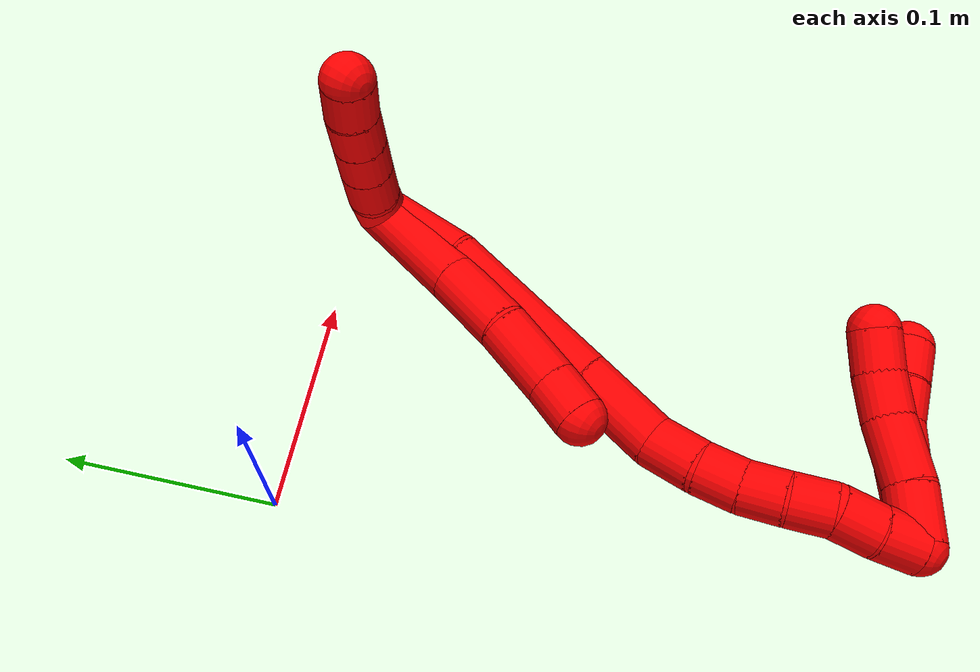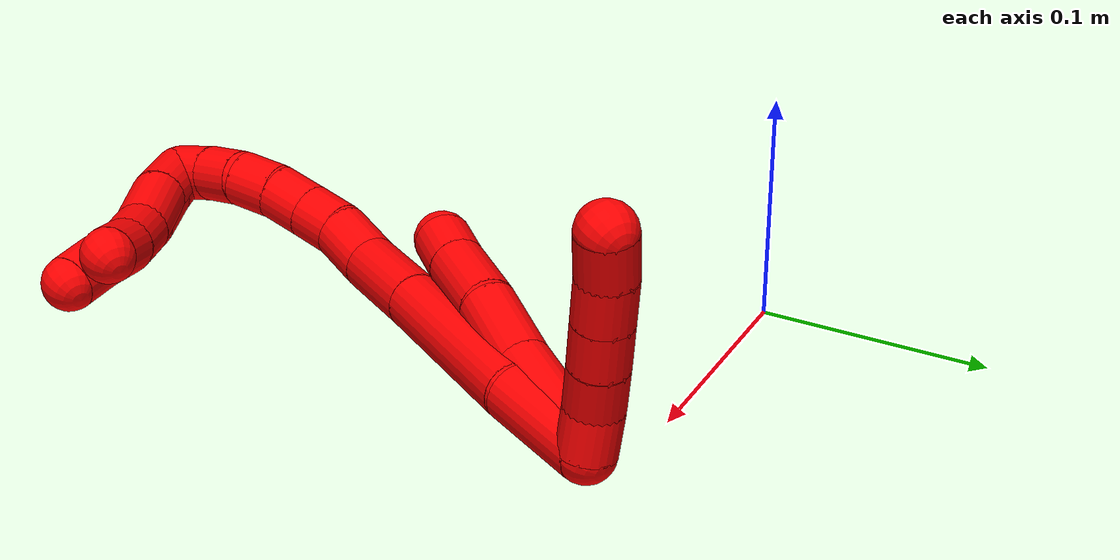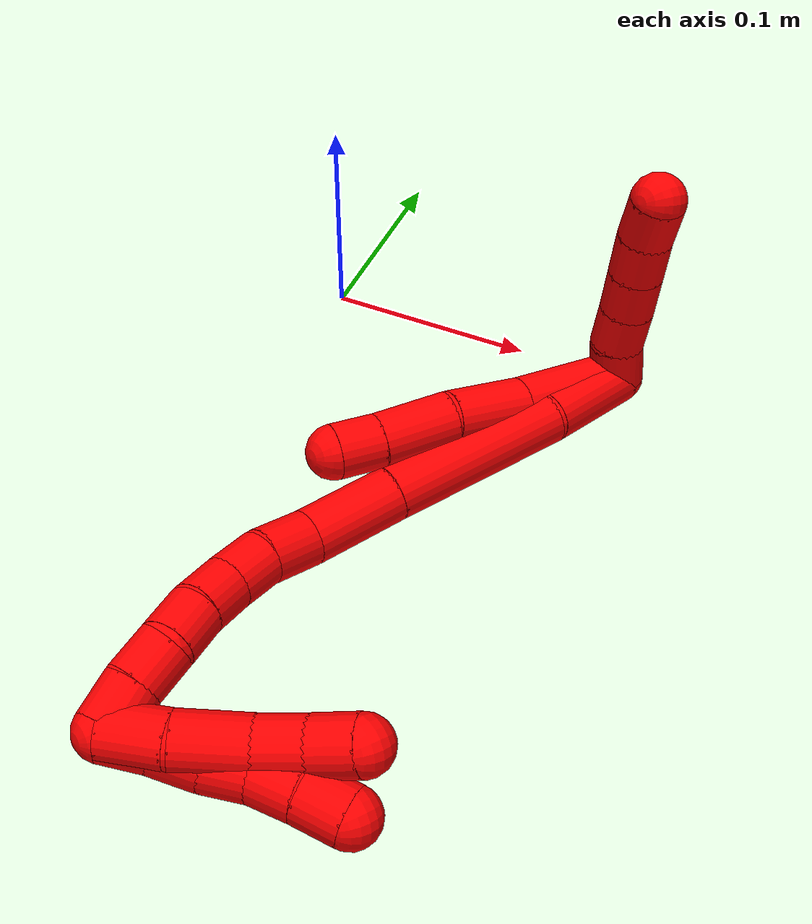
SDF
<sdf version="1.7">
 <world name="default">
  <model name="2">
   <static>0</static>
   <link name="2">
    <collision name="collision-cylinder-e_1_2_8">
     <pose>-0.004675 -0.000188 0.027952 0.006713 -0.16573 -0.000558</pose>
     <geometry><cylinder><radius>0.0125</radius><length>0.056681</length></cylinder></geometry>
     <surface>
      <friction><ode><mu>1.16</mu><mu2>1.16</mu2><slip1>0</slip1><slip2>0</slip2></ode></friction>
      <contact><ode><kp>1e+06</kp><kd>1</kd><max_vel>0</max_vel><min_depth>0.001</min_depth></ode></contact>
     </surface>
    </collision>
    <visual name="visual-cylinder-e_1_2_8">
     <pose>-0.004675 -0.000188 0.027952 0.006713 -0.16573 -0.000558</pose>
     <geometry><cylinder><radius>0.0125</radius><length>0.056681</length></cylinder></geometry>
     <material><ambient>1 0 0 1</ambient></material>
    </visual>
    <collision name="collision-cylinder-e_2_8_9">
     <pose>-0.012399 0.00077 0.074243 -0.062341 -0.164384 0.005137</pose>
     <geometry><cylinder><radius>0.0125</radius><length>0.037254</length></cylinder></geometry>
     <surface>
      <friction><ode><mu>1.16</mu><mu2>1.16</mu2><slip1>0</slip1><slip2>0</slip2></ode></friction>
      <contact><ode><kp>1e+06</kp><kd>1</kd><max_vel>0</max_vel><min_depth>0.001</min_depth></ode></contact>
     </surface>
    </collision>
    <visual name="visual-cylinder-e_2_8_9">
     <pose>-0.012399 0.00077 0.074243 -0.062341 -0.164384 0.005137</pose>
     <geometry><cylinder><radius>0.0125</radius><length>0.037254</length></cylinder></geometry>
     <material><ambient>1 0 0 1</ambient></material>
    </visual>
    <collision name="collision-cylinder-e_3_9_10">
     <pose>-0.020531 0.000943 0.109387 0.057762 -0.293323 -0.008535</pose>
     <geometry><cylinder><radius>0.0125</radius><length>0.035165</length></cylinder></geometry>
     <surface>
      <friction><ode><mu>1.16</mu><mu2>1.16</mu2><slip1>0</slip1><slip2>0</slip2></ode></friction>
      <contact><ode><kp>1e+06</kp><kd>1</kd><max_vel>0</max_vel><min_depth>0.001</min_depth></ode></contact>
     </surface>
    </collision>
    <visual name="visual-cylinder-e_3_9_10">
     <pose>-0.020531 0.000943 0.109387 0.057762 -0.293323 -0.008535</pose>
     <geometry><cylinder><radius>0.0125</radius><length>0.035165</length></cylinder></geometry>
     <material><ambient>1 0 0 1</ambient></material>
    </visual>
    <collision name="collision-cylinder-e_4_10_6">
     <pose>-0.028701 7.7e-05 0.136174 -0.010639 -0.299785 0.001607</pose>
     <geometry><cylinder><radius>0.0125</radius><length>0.0209</length></cylinder></geometry>
     <surface>
      <friction><ode><mu>1.16</mu><mu2>1.16</mu2><slip1>0</slip1><slip2>0</slip2></ode></friction>
      <contact><ode><kp>1e+06</kp><kd>1</kd><max_vel>0</max_vel><min_depth>0.001</min_depth></ode></contact>
     </surface>
    </collision>
    <visual name="visual-cylinder-e_4_10_6">
     <pose>-0.028701 7.7e-05 0.136174 -0.010639 -0.299785 0.001607</pose>
     <geometry><cylinder><radius>0.0125</radius><length>0.0209</length></cylinder></geometry>
     <material><ambient>1 0 0 1</ambient></material>
    </visual>
    <collision name="collision-cylinder-e_1_2_11">
     <pose>0.004815 0.008401 0.002497 -1.28192 0.502422 -0.378335</pose>
     <geometry><cylinder><radius>0.0125</radius><length>0.02</length></cylinder></geometry>
     <surface>
      <friction><ode><mu>1.16</mu><mu2>1.16</mu2><slip1>0</slip1><slip2>0</slip2></ode></friction>
      <contact><ode><kp>1e+06</kp><kd>1</kd><max_vel>0</max_vel><min_depth>0.001</min_depth></ode></contact>
     </surface>
    </collision>
    <visual name="visual-cylinder-e_1_2_11">
     <pose>0.004815 0.008401 0.002497 -1.28192 0.502422 -0.378335</pose>
     <geometry><cylinder><radius>0.0125</radius><length>0.02</length></cylinder></geometry>
     <material><ambient>1 0 0 1</ambient></material>
    </visual>
    <collision name="collision-cylinder-e_2_11_12">
     <pose>0.016037 0.024385 0.006204 -1.41249 0.695228 -0.599517</pose>
     <geometry><cylinder><radius>0.0125</radius><length>0.02</length></cylinder></geometry>
     <surface>
      <friction><ode><mu>1.16</mu><mu2>1.16</mu2><slip1>0</slip1><slip2>0</slip2></ode></friction>
      <contact><ode><kp>1e+06</kp><kd>1</kd><max_vel>0</max_vel><min_depth>0.001</min_depth></ode></contact>
     </surface>
    </collision>
    <visual name="visual-cylinder-e_2_11_12">
     <pose>0.016037 0.024385 0.006204 -1.41249 0.695228 -0.599517</pose>
     <geometry><cylinder><radius>0.0125</radius><length>0.02</length></cylinder></geometry>
     <material><ambient>1 0 0 1</ambient></material>
    </visual>
    <collision name="collision-cylinder-e_3_12_13">
     <pose>0.028741 0.039573 0.008995 -1.36585 0.681367 -0.56155</pose>
     <geometry><cylinder><radius>0.0125</radius><length>0.02</length></cylinder></geometry>
     <surface>
      <friction><ode><mu>1.16</mu><mu2>1.16</mu2><slip1>0</slip1><slip2>0</slip2></ode></friction>
      <contact><ode><kp>1e+06</kp><kd>1</kd><max_vel>0</max_vel><min_depth>0.001</min_depth></ode></contact>
     </surface>
    </collision>
    <visual name="visual-cylinder-e_3_12_13">
     <pose>0.028741 0.039573 0.008995 -1.36585 0.681367 -0.56155</pose>
     <geometry><cylinder><radius>0.0125</radius><length>0.02</length></cylinder></geometry>
     <material><ambient>1 0 0 1</ambient></material>
    </visual>
    <collision name="collision-cylinder-e_4_13_14">
     <pose>0.041337 0.054785 0.012149 -1.36688 0.681201 -0.561974</pose>
     <geometry><cylinder><radius>0.0125</radius><length>0.02</length></cylinder></geometry>
     <surface>
      <friction><ode><mu>1.16</mu><mu2>1.16</mu2><slip1>0</slip1><slip2>0</slip2></ode></friction>
      <contact><ode><kp>1e+06</kp><kd>1</kd><max_vel>0</max_vel><min_depth>0.001</min_depth></ode></contact>
     </surface>
    </collision>
    <visual name="visual-cylinder-e_4_13_14">
     <pose>0.041337 0.054785 0.012149 -1.36688 0.681201 -0.561974</pose>
     <geometry><cylinder><radius>0.0125</radius><length>0.02</length></cylinder></geometry>
     <material><ambient>1 0 0 1</ambient></material>
    </visual>
    <collision name="collision-cylinder-e_5_14_5">
     <pose>0.054694 0.06928 0.01537 -1.33598 0.783798 -0.630398</pose>
     <geometry><cylinder><radius>0.0125</radius><length>0.02</length></cylinder></geometry>
     <surface>
      <friction><ode><mu>1.16</mu><mu2>1.16</mu2><slip1>0</slip1><slip2>0</slip2></ode></friction>
      <contact><ode><kp>1e+06</kp><kd>1</kd><max_vel>0</max_vel><min_depth>0.001</min_depth></ode></contact>
     </surface>
    </collision>
    <visual name="visual-cylinder-e_5_14_5">
     <pose>0.054694 0.06928 0.01537 -1.33598 0.783798 -0.630398</pose>
     <geometry><cylinder><radius>0.0125</radius><length>0.02</length></cylinder></geometry>
     <material><ambient>1 0 0 1</ambient></material>
    </visual>
    <collision name="collision-cylinder-e_1_2_15">
     <pose>-0.001123 -0.00434 0.023057 0.186049 -0.047845 -0.004464</pose>
     <geometry><cylinder><radius>0.0125</radius><length>0.046977</length></cylinder></geometry>
     <surface>
      <friction><ode><mu>1.16</mu><mu2>1.16</mu2><slip1>0</slip1><slip2>0</slip2></ode></friction>
      <contact><ode><kp>1e+06</kp><kd>1</kd><max_vel>0</max_vel><min_depth>0.001</min_depth></ode></contact>
     </surface>
    </collision>
    <visual name="visual-cylinder-e_1_2_15">
     <pose>-0.001123 -0.00434 0.023057 0.186049 -0.047845 -0.004464</pose>
     <geometry><cylinder><radius>0.0125</radius><length>0.046977</length></cylinder></geometry>
     <material><ambient>1 0 0 1</ambient></material>
    </visual>
    <collision name="collision-cylinder-e_2_15_16">
     <pose>-0.012077 -0.016119 0.086865 0.180555 -0.233002 -0.021187</pose>
     <geometry><cylinder><radius>0.0125</radius><length>0.085151</length></cylinder></geometry>
     <surface>
      <friction><ode><mu>1.16</mu><mu2>1.16</mu2><slip1>0</slip1><slip2>0</slip2></ode></friction>
      <contact><ode><kp>1e+06</kp><kd>1</kd><max_vel>0</max_vel><min_depth>0.001</min_depth></ode></contact>
     </surface>
    </collision>
    <visual name="visual-cylinder-e_2_15_16">
     <pose>-0.012077 -0.016119 0.086865 0.180555 -0.233002 -0.021187</pose>
     <geometry><cylinder><radius>0.0125</radius><length>0.085151</length></cylinder></geometry>
     <material><ambient>1 0 0 1</ambient></material>
    </visual>
    <collision name="collision-cylinder-e_3_16_17">
     <pose>-0.027138 -0.027848 0.148008 0.207398 -0.245904 -0.02572</pose>
     <geometry><cylinder><radius>0.0125</radius><length>0.042969</length></cylinder></geometry>
     <surface>
      <friction><ode><mu>1.16</mu><mu2>1.16</mu2><slip1>0</slip1><slip2>0</slip2></ode></friction>
      <contact><ode><kp>1e+06</kp><kd>1</kd><max_vel>0</max_vel><min_depth>0.001</min_depth></ode></contact>
     </surface>
    </collision>
    <visual name="visual-cylinder-e_3_16_17">
     <pose>-0.027138 -0.027848 0.148008 0.207398 -0.245904 -0.02572</pose>
     <geometry><cylinder><radius>0.0125</radius><length>0.042969</length></cylinder></geometry>
     <material><ambient>1 0 0 1</ambient></material>
    </visual>
    <collision name="collision-cylinder-e_4_17_18">
     <pose>-0.031819 -0.03288 0.180705 0.060126 0.044475 0.001338</pose>
     <geometry><cylinder><radius>0.0125</radius><length>0.024679</length></cylinder></geometry>
     <surface>
      <friction><ode><mu>1.16</mu><mu2>1.16</mu2><slip1>0</slip1><slip2>0</slip2></ode></friction>
      <contact><ode><kp>1e+06</kp><kd>1</kd><max_vel>0</max_vel><min_depth>0.001</min_depth></ode></contact>
     </surface>
    </collision>
    <visual name="visual-cylinder-e_4_17_18">
     <pose>-0.031819 -0.03288 0.180705 0.060126 0.044475 0.001338</pose>
     <geometry><cylinder><radius>0.0125</radius><length>0.024679</length></cylinder></geometry>
     <material><ambient>1 0 0 1</ambient></material>
    </visual>
    <collision name="collision-cylinder-e_5_18_19">
     <pose>-0.030417 -0.036282 0.20272 0.267497 0.084585 0.011388</pose>
     <geometry><cylinder><radius>0.0125</radius><length>0.020208</length></cylinder></geometry>
     <surface>
      <friction><ode><mu>1.16</mu><mu2>1.16</mu2><slip1>0</slip1><slip2>0</slip2></ode></friction>
      <contact><ode><kp>1e+06</kp><kd>1</kd><max_vel>0</max_vel><min_depth>0.001</min_depth></ode></contact>
     </surface>
    </collision>
    <visual name="visual-cylinder-e_5_18_19">
     <pose>-0.030417 -0.036282 0.20272 0.267497 0.084585 0.011388</pose>
     <geometry><cylinder><radius>0.0125</radius><length>0.020208</length></cylinder></geometry>
     <material><ambient>1 0 0 1</ambient></material>
    </visual>
    <collision name="collision-cylinder-e_6_19_20">
     <pose>-0.027059 -0.041439 0.221789 0.260604 0.253027 0.033333</pose>
     <geometry><cylinder><radius>0.0125</radius><length>0.020008</length></cylinder></geometry>
     <surface>
      <friction><ode><mu>1.16</mu><mu2>1.16</mu2><slip1>0</slip1><slip2>0</slip2></ode></friction>
      <contact><ode><kp>1e+06</kp><kd>1</kd><max_vel>0</max_vel><min_depth>0.001</min_depth></ode></contact>
     </surface>
    </collision>
    <visual name="visual-cylinder-e_6_19_20">
     <pose>-0.027059 -0.041439 0.221789 0.260604 0.253027 0.033333</pose>
     <geometry><cylinder><radius>0.0125</radius><length>0.020008</length></cylinder></geometry>
     <material><ambient>1 0 0 1</ambient></material>
    </visual>
    <collision name="collision-cylinder-e_7_20_21">
     <pose>-0.022206 -0.047942 0.240005 0.424834 0.237092 0.051363</pose>
     <geometry><cylinder><radius>0.0125</radius><length>0.020004</length></cylinder></geometry>
     <surface>
      <friction><ode><mu>1.16</mu><mu2>1.16</mu2><slip1>0</slip1><slip2>0</slip2></ode></friction>
      <contact><ode><kp>1e+06</kp><kd>1</kd><max_vel>0</max_vel><min_depth>0.001</min_depth></ode></contact>
     </surface>
    </collision>
    <visual name="visual-cylinder-e_7_20_21">
     <pose>-0.022206 -0.047942 0.240005 0.424834 0.237092 0.051363</pose>
     <geometry><cylinder><radius>0.0125</radius><length>0.020004</length></cylinder></geometry>
     <material><ambient>1 0 0 1</ambient></material>
    </visual>
    <collision name="collision-cylinder-e_8_21_22">
     <pose>-0.020191 -0.057125 0.257413 0.544374 -0.033482 -0.009346</pose>
     <geometry><cylinder><radius>0.0125</radius><length>0.020001</length></cylinder></geometry>
     <surface>
      <friction><ode><mu>1.16</mu><mu2>1.16</mu2><slip1>0</slip1><slip2>0</slip2></ode></friction>
      <contact><ode><kp>1e+06</kp><kd>1</kd><max_vel>0</max_vel><min_depth>0.001</min_depth></ode></contact>
     </surface>
    </collision>
    <visual name="visual-cylinder-e_8_21_22">
     <pose>-0.020191 -0.057125 0.257413 0.544374 -0.033482 -0.009346</pose>
     <geometry><cylinder><radius>0.0125</radius><length>0.020001</length></cylinder></geometry>
     <material><ambient>1 0 0 1</ambient></material>
    </visual>
    <collision name="collision-cylinder-e_9_22_1">
     <pose>-0.020354 -0.068456 0.273844 0.663045 0.017155 0.005905</pose>
     <geometry><cylinder><radius>0.0125</radius><length>0.020003</length></cylinder></geometry>
     <surface>
      <friction><ode><mu>1.16</mu><mu2>1.16</mu2><slip1>0</slip1><slip2>0</slip2></ode></friction>
      <contact><ode><kp>1e+06</kp><kd>1</kd><max_vel>0</max_vel><min_depth>0.001</min_depth></ode></contact>
     </surface>
    </collision>
    <visual name="visual-cylinder-e_9_22_1">
     <pose>-0.020354 -0.068456 0.273844 0.663045 0.017155 0.005905</pose>
     <geometry><cylinder><radius>0.0125</radius><length>0.020003</length></cylinder></geometry>
     <material><ambient>1 0 0 1</ambient></material>
    </visual>
    <collision name="collision-cylinder-e_1_1_23">
     <pose>-0.010775 -0.078629 0.273188 2.70172 0.783916 2.15003</pose>
     <geometry><cylinder><radius>0.0125</radius><length>0.026648</length></cylinder></geometry>
     <surface>
      <friction><ode><mu>1.16</mu><mu2>1.16</mu2><slip1>0</slip1><slip2>0</slip2></ode></friction>
      <contact><ode><kp>1e+06</kp><kd>1</kd><max_vel>0</max_vel><min_depth>0.001</min_depth></ode></contact>
     </surface>
    </collision>
    <visual name="visual-cylinder-e_1_1_23">
     <pose>-0.010775 -0.078629 0.273188 2.70172 0.783916 2.15003</pose>
     <geometry><cylinder><radius>0.0125</radius><length>0.026648</length></cylinder></geometry>
     <material><ambient>1 0 0 1</ambient></material>
    </visual>
    <collision name="collision-cylinder-e_2_23_24">
     <pose>0.008051 -0.086846 0.252739 2.80265 0.640766 2.18934</pose>
     <geometry><cylinder><radius>0.0125</radius><length>0.031512</length></cylinder></geometry>
     <surface>
      <friction><ode><mu>1.16</mu><mu2>1.16</mu2><slip1>0</slip1><slip2>0</slip2></ode></friction>
      <contact><ode><kp>1e+06</kp><kd>1</kd><max_vel>0</max_vel><min_depth>0.001</min_depth></ode></contact>
     </surface>
    </collision>
    <visual name="visual-cylinder-e_2_23_24">
     <pose>0.008051 -0.086846 0.252739 2.80265 0.640766 2.18934</pose>
     <geometry><cylinder><radius>0.0125</radius><length>0.031512</length></cylinder></geometry>
     <material><ambient>1 0 0 1</ambient></material>
    </visual>
    <collision name="collision-cylinder-e_3_24_25">
     <pose>0.025226 -0.092736 0.233506 2.91473 0.801261 2.61608</pose>
     <geometry><cylinder><radius>0.0125</radius><length>0.021598</length></cylinder></geometry>
     <surface>
      <friction><ode><mu>1.16</mu><mu2>1.16</mu2><slip1>0</slip1><slip2>0</slip2></ode></friction>
      <contact><ode><kp>1e+06</kp><kd>1</kd><max_vel>0</max_vel><min_depth>0.001</min_depth></ode></contact>
     </surface>
    </collision>
    <visual name="visual-cylinder-e_3_24_25">
     <pose>0.025226 -0.092736 0.233506 2.91473 0.801261 2.61608</pose>
     <geometry><cylinder><radius>0.0125</radius><length>0.021598</length></cylinder></geometry>
     <material><ambient>1 0 0 1</ambient></material>
    </visual>
    <collision name="collision-cylinder-e_4_25_4">
     <pose>0.041135 -0.095262 0.220245 3.00187 0.936484 2.86662</pose>
     <geometry><cylinder><radius>0.0125</radius><length>0.020243</length></cylinder></geometry>
     <surface>
      <friction><ode><mu>1.16</mu><mu2>1.16</mu2><slip1>0</slip1><slip2>0</slip2></ode></friction>
      <contact><ode><kp>1e+06</kp><kd>1</kd><max_vel>0</max_vel><min_depth>0.001</min_depth></ode></contact>
     </surface>
    </collision>
    <visual name="visual-cylinder-e_4_25_4">
     <pose>0.041135 -0.095262 0.220245 3.00187 0.936484 2.86662</pose>
     <geometry><cylinder><radius>0.0125</radius><length>0.020243</length></cylinder></geometry>
     <material><ambient>1 0 0 1</ambient></material>
    </visual>
    <collision name="collision-cylinder-e_1_1_26">
     <pose>-0.013846 -0.078609 0.275103 2.59849 0.686347 1.81769</pose>
     <geometry><cylinder><radius>0.0125</radius><length>0.02</length></cylinder></geometry>
     <surface>
      <friction><ode><mu>1.16</mu><mu2>1.16</mu2><slip1>0</slip1><slip2>0</slip2></ode></friction>
      <contact><ode><kp>1e+06</kp><kd>1</kd><max_vel>0</max_vel><min_depth>0.001</min_depth></ode></contact>
     </surface>
    </collision>
    <visual name="visual-cylinder-e_1_1_26">
     <pose>-0.013846 -0.078609 0.275103 2.59849 0.686347 1.81769</pose>
     <geometry><cylinder><radius>0.0125</radius><length>0.02</length></cylinder></geometry>
     <material><ambient>1 0 0 1</ambient></material>
    </visual>
    <collision name="collision-cylinder-e_2_26_27">
     <pose>-0.002496 -0.088042 0.261747 2.46252 0.525032 1.30072</pose>
     <geometry><cylinder><radius>0.0125</radius><length>0.02</length></cylinder></geometry>
     <surface>
      <friction><ode><mu>1.16</mu><mu2>1.16</mu2><slip1>0</slip1><slip2>0</slip2></ode></friction>
      <contact><ode><kp>1e+06</kp><kd>1</kd><max_vel>0</max_vel><min_depth>0.001</min_depth></ode></contact>
     </surface>
    </collision>
    <visual name="visual-cylinder-e_2_26_27">
     <pose>-0.002496 -0.088042 0.261747 2.46252 0.525032 1.30072</pose>
     <geometry><cylinder><radius>0.0125</radius><length>0.02</length></cylinder></geometry>
     <material><ambient>1 0 0 1</ambient></material>
    </visual>
    <collision name="collision-cylinder-e_3_27_28">
     <pose>0.009379 -0.097077 0.248694 2.62369 0.756352 1.96548</pose>
     <geometry><cylinder><radius>0.0125</radius><length>0.02</length></cylinder></geometry>
     <surface>
      <friction><ode><mu>1.16</mu><mu2>1.16</mu2><slip1>0</slip1><slip2>0</slip2></ode></friction>
      <contact><ode><kp>1e+06</kp><kd>1</kd><max_vel>0</max_vel><min_depth>0.001</min_depth></ode></contact>
     </surface>
    </collision>
    <visual name="visual-cylinder-e_3_27_28">
     <pose>0.009379 -0.097077 0.248694 2.62369 0.756352 1.96548</pose>
     <geometry><cylinder><radius>0.0125</radius><length>0.02</length></cylinder></geometry>
     <material><ambient>1 0 0 1</ambient></material>
    </visual>
    <collision name="collision-cylinder-e_4_28_29">
     <pose>0.02403 -0.105158 0.237984 2.34599 0.892767 1.70057</pose>
     <geometry><cylinder><radius>0.0125</radius><length>0.02</length></cylinder></geometry>
     <surface>
      <friction><ode><mu>1.16</mu><mu2>1.16</mu2><slip1>0</slip1><slip2>0</slip2></ode></friction>
      <contact><ode><kp>1e+06</kp><kd>1</kd><max_vel>0</max_vel><min_depth>0.001</min_depth></ode></contact>
     </surface>
    </collision>
    <visual name="visual-cylinder-e_4_28_29">
     <pose>0.02403 -0.105158 0.237984 2.34599 0.892767 1.70057</pose>
     <geometry><cylinder><radius>0.0125</radius><length>0.02</length></cylinder></geometry>
     <material><ambient>1 0 0 1</ambient></material>
    </visual>
    <collision name="collision-cylinder-e_5_29_3">
     <pose>0.039084 -0.114878 0.229151 2.27418 0.813399 1.49832</pose>
     <geometry><cylinder><radius>0.0125</radius><length>0.02</length></cylinder></geometry>
     <surface>
      <friction><ode><mu>1.16</mu><mu2>1.16</mu2><slip1>0</slip1><slip2>0</slip2></ode></friction>
      <contact><ode><kp>1e+06</kp><kd>1</kd><max_vel>0</max_vel><min_depth>0.001</min_depth></ode></contact>
     </surface>
    </collision>
    <visual name="visual-cylinder-e_5_29_3">
     <pose>0.039084 -0.114878 0.229151 2.27418 0.813399 1.49832</pose>
     <geometry><cylinder><radius>0.0125</radius><length>0.02</length></cylinder></geometry>
     <material><ambient>1 0 0 1</ambient></material>
    </visual>
    <collision name="collision-sphere-3">
     <pose>0.046351 -0.120118 0.224707 0 -0 0</pose>
     <geometry><sphere><radius>0.0125</radius></sphere></geometry>
     <surface>
      <friction><ode><mu>1.16</mu><mu2>1.16</mu2><slip1>0</slip1><slip2>0</slip2></ode></friction>
      <contact><ode><kp>1e+06</kp><kd>1</kd><max_vel>0</max_vel><min_depth>0.001</min_depth></ode></contact>
     </surface>
    </collision>
    <visual name="visual-sphere-3">
     <pose>0.046351 -0.120118 0.224707 0 -0 0</pose>
     <geometry><sphere><radius>0.0125</radius></sphere></geometry>
     <material><ambient>1 0 0 1</ambient></material>
    </visual>
    <collision name="collision-sphere-29">
     <pose>0.031818 -0.109639 0.233594 0 -0 0</pose>
     <geometry><sphere><radius>0.0125</radius></sphere></geometry>
     <surface>
      <friction><ode><mu>1.16</mu><mu2>1.16</mu2><slip1>0</slip1><slip2>0</slip2></ode></friction>
      <contact><ode><kp>1e+06</kp><kd>1</kd><max_vel>0</max_vel><min_depth>0.001</min_depth></ode></contact>
     </surface>
    </collision>
    <visual name="visual-sphere-29">
     <pose>0.031818 -0.109639 0.233594 0 -0 0</pose>
     <geometry><sphere><radius>0.0125</radius></sphere></geometry>
     <material><ambient>1 0 0 1</ambient></material>
    </visual>
    <collision name="collision-sphere-28">
     <pose>0.016242 -0.100678 0.242374 0 -0 0</pose>
     <geometry><sphere><radius>0.0125</radius></sphere></geometry>
     <surface>
      <friction><ode><mu>1.16</mu><mu2>1.16</mu2><slip1>0</slip1><slip2>0</slip2></ode></friction>
      <contact><ode><kp>1e+06</kp><kd>1</kd><max_vel>0</max_vel><min_depth>0.001</min_depth></ode></contact>
     </surface>
    </collision>
    <visual name="visual-sphere-28">
     <pose>0.016242 -0.100678 0.242374 0 -0 0</pose>
     <geometry><sphere><radius>0.0125</radius></sphere></geometry>
     <material><ambient>1 0 0 1</ambient></material>
    </visual>
    <collision name="collision-sphere-27">
     <pose>0.002516 -0.093476 0.255013 0 -0 0</pose>
     <geometry><sphere><radius>0.0125</radius></sphere></geometry>
     <surface>
      <friction><ode><mu>1.16</mu><mu2>1.16</mu2><slip1>0</slip1><slip2>0</slip2></ode></friction>
      <contact><ode><kp>1e+06</kp><kd>1</kd><max_vel>0</max_vel><min_depth>0.001</min_depth></ode></contact>
     </surface>
    </collision>
    <visual name="visual-sphere-27">
     <pose>0.002516 -0.093476 0.255013 0 -0 0</pose>
     <geometry><sphere><radius>0.0125</radius></sphere></geometry>
     <material><ambient>1 0 0 1</ambient></material>
    </visual>
    <collision name="collision-sphere-26">
     <pose>-0.007508 -0.082607 0.26848 0 -0 0</pose>
     <geometry><sphere><radius>0.0125</radius></sphere></geometry>
     <surface>
      <friction><ode><mu>1.16</mu><mu2>1.16</mu2><slip1>0</slip1><slip2>0</slip2></ode></friction>
      <contact><ode><kp>1e+06</kp><kd>1</kd><max_vel>0</max_vel><min_depth>0.001</min_depth></ode></contact>
     </surface>
    </collision>
    <visual name="visual-sphere-26">
     <pose>-0.007508 -0.082607 0.26848 0 -0 0</pose>
     <geometry><sphere><radius>0.0125</radius></sphere></geometry>
     <material><ambient>1 0 0 1</ambient></material>
    </visual>
    <collision name="collision-sphere-4">
     <pose>0.049287 -0.096097 0.214305 0 -0 0</pose>
     <geometry><sphere><radius>0.0125</radius></sphere></geometry>
     <surface>
      <friction><ode><mu>1.16</mu><mu2>1.16</mu2><slip1>0</slip1><slip2>0</slip2></ode></friction>
      <contact><ode><kp>1e+06</kp><kd>1</kd><max_vel>0</max_vel><min_depth>0.001</min_depth></ode></contact>
     </surface>
    </collision>
    <visual name="visual-sphere-4">
     <pose>0.049287 -0.096097 0.214305 0 -0 0</pose>
     <geometry><sphere><radius>0.0125</radius></sphere></geometry>
     <material><ambient>1 0 0 1</ambient></material>
    </visual>
    <collision name="collision-sphere-25">
     <pose>0.032982 -0.094426 0.226184 0 -0 0</pose>
     <geometry><sphere><radius>0.0125</radius></sphere></geometry>
     <surface>
      <friction><ode><mu>1.16</mu><mu2>1.16</mu2><slip1>0</slip1><slip2>0</slip2></ode></friction>
      <contact><ode><kp>1e+06</kp><kd>1</kd><max_vel>0</max_vel><min_depth>0.001</min_depth></ode></contact>
     </surface>
    </collision>
    <visual name="visual-sphere-25">
     <pose>0.032982 -0.094426 0.226184 0 -0 0</pose>
     <geometry><sphere><radius>0.0125</radius></sphere></geometry>
     <material><ambient>1 0 0 1</ambient></material>
    </visual>
    <collision name="collision-sphere-24">
     <pose>0.01747 -0.091046 0.240827 0 -0 0</pose>
     <geometry><sphere><radius>0.0125</radius></sphere></geometry>
     <surface>
      <friction><ode><mu>1.16</mu><mu2>1.16</mu2><slip1>0</slip1><slip2>0</slip2></ode></friction>
      <contact><ode><kp>1e+06</kp><kd>1</kd><max_vel>0</max_vel><min_depth>0.001</min_depth></ode></contact>
     </surface>
    </collision>
    <visual name="visual-sphere-24">
     <pose>0.01747 -0.091046 0.240827 0 -0 0</pose>
     <geometry><sphere><radius>0.0125</radius></sphere></geometry>
     <material><ambient>1 0 0 1</ambient></material>
    </visual>
    <collision name="collision-sphere-23">
     <pose>-0.001368 -0.082647 0.264651 0 -0 0</pose>
     <geometry><sphere><radius>0.0125</radius></sphere></geometry>
     <surface>
      <friction><ode><mu>1.16</mu><mu2>1.16</mu2><slip1>0</slip1><slip2>0</slip2></ode></friction>
      <contact><ode><kp>1e+06</kp><kd>1</kd><max_vel>0</max_vel><min_depth>0.001</min_depth></ode></contact>
     </surface>
    </collision>
    <visual name="visual-sphere-23">
     <pose>-0.001368 -0.082647 0.264651 0 -0 0</pose>
     <geometry><sphere><radius>0.0125</radius></sphere></geometry>
     <material><ambient>1 0 0 1</ambient></material>
    </visual>
    <collision name="collision-sphere-1">
     <pose>-0.020183 -0.074611 0.281725 0 -0 0</pose>
     <geometry><sphere><radius>0.0125</radius></sphere></geometry>
     <surface>
      <friction><ode><mu>1.16</mu><mu2>1.16</mu2><slip1>0</slip1><slip2>0</slip2></ode></friction>
      <contact><ode><kp>1e+06</kp><kd>1</kd><max_vel>0</max_vel><min_depth>0.001</min_depth></ode></contact>
     </surface>
    </collision>
    <visual name="visual-sphere-1">
     <pose>-0.020183 -0.074611 0.281725 0 -0 0</pose>
     <geometry><sphere><radius>0.0125</radius></sphere></geometry>
     <material><ambient>1 0 0 1</ambient></material>
    </visual>
    <collision name="collision-sphere-22">
     <pose>-0.020526 -0.062301 0.265963 0 -0 0</pose>
     <geometry><sphere><radius>0.0125</radius></sphere></geometry>
     <surface>
      <friction><ode><mu>1.16</mu><mu2>1.16</mu2><slip1>0</slip1><slip2>0</slip2></ode></friction>
      <contact><ode><kp>1e+06</kp><kd>1</kd><max_vel>0</max_vel><min_depth>0.001</min_depth></ode></contact>
     </surface>
    </collision>
    <visual name="visual-sphere-22">
     <pose>-0.020526 -0.062301 0.265963 0 -0 0</pose>
     <geometry><sphere><radius>0.0125</radius></sphere></geometry>
     <material><ambient>1 0 0 1</ambient></material>
    </visual>
    <collision name="collision-sphere-21">
     <pose>-0.019856 -0.051949 0.248863 0 -0 0</pose>
     <geometry><sphere><radius>0.0125</radius></sphere></geometry>
     <surface>
      <friction><ode><mu>1.16</mu><mu2>1.16</mu2><slip1>0</slip1><slip2>0</slip2></ode></friction>
      <contact><ode><kp>1e+06</kp><kd>1</kd><max_vel>0</max_vel><min_depth>0.001</min_depth></ode></contact>
     </surface>
    </collision>
    <visual name="visual-sphere-21">
     <pose>-0.019856 -0.051949 0.248863 0 -0 0</pose>
     <geometry><sphere><radius>0.0125</radius></sphere></geometry>
     <material><ambient>1 0 0 1</ambient></material>
    </visual>
    <collision name="collision-sphere-11">
     <pose>0.009631 0.016802 0.004993 0 -0 0</pose>
     <geometry><sphere><radius>0.0125</radius></sphere></geometry>
     <surface>
      <friction><ode><mu>1.16</mu><mu2>1.16</mu2><slip1>0</slip1><slip2>0</slip2></ode></friction>
      <contact><ode><kp>1e+06</kp><kd>1</kd><max_vel>0</max_vel><min_depth>0.001</min_depth></ode></contact>
     </surface>
    </collision>
    <visual name="visual-sphere-11">
     <pose>0.009631 0.016802 0.004993 0 -0 0</pose>
     <geometry><sphere><radius>0.0125</radius></sphere></geometry>
     <material><ambient>1 0 0 1</ambient></material>
    </visual>
    <collision name="collision-sphere-6">
     <pose>-0.031787 0.000183 0.146157 0 -0 0</pose>
     <geometry><sphere><radius>0.0125</radius></sphere></geometry>
     <surface>
      <friction><ode><mu>1.16</mu><mu2>1.16</mu2><slip1>0</slip1><slip2>0</slip2></ode></friction>
      <contact><ode><kp>1e+06</kp><kd>1</kd><max_vel>0</max_vel><min_depth>0.001</min_depth></ode></contact>
     </surface>
    </collision>
    <visual name="visual-sphere-6">
     <pose>-0.031787 0.000183 0.146157 0 -0 0</pose>
     <geometry><sphere><radius>0.0125</radius></sphere></geometry>
     <material><ambient>1 0 0 1</ambient></material>
    </visual>
    <collision name="collision-sphere-10">
     <pose>-0.025615 -2.9e-05 0.126191 0 -0 0</pose>
     <geometry><sphere><radius>0.0125</radius></sphere></geometry>
     <surface>
      <friction><ode><mu>1.16</mu><mu2>1.16</mu2><slip1>0</slip1><slip2>0</slip2></ode></friction>
      <contact><ode><kp>1e+06</kp><kd>1</kd><max_vel>0</max_vel><min_depth>0.001</min_depth></ode></contact>
     </surface>
    </collision>
    <visual name="visual-sphere-10">
     <pose>-0.025615 -2.9e-05 0.126191 0 -0 0</pose>
     <geometry><sphere><radius>0.0125</radius></sphere></geometry>
     <material><ambient>1 0 0 1</ambient></material>
    </visual>
    <collision name="collision-sphere-9">
     <pose>-0.015447 0.001914 0.092584 0 -0 0</pose>
     <geometry><sphere><radius>0.0125</radius></sphere></geometry>
     <surface>
      <friction><ode><mu>1.16</mu><mu2>1.16</mu2><slip1>0</slip1><slip2>0</slip2></ode></friction>
      <contact><ode><kp>1e+06</kp><kd>1</kd><max_vel>0</max_vel><min_depth>0.001</min_depth></ode></contact>
     </surface>
    </collision>
    <visual name="visual-sphere-9">
     <pose>-0.015447 0.001914 0.092584 0 -0 0</pose>
     <geometry><sphere><radius>0.0125</radius></sphere></geometry>
     <material><ambient>1 0 0 1</ambient></material>
    </visual>
    <collision name="collision-sphere-2">
     <geometry><sphere><radius>0.0125</radius></sphere></geometry>
     <surface>
      <friction><ode><mu>1.16</mu><mu2>1.16</mu2><slip1>0</slip1><slip2>0</slip2></ode></friction>
      <contact><ode><kp>1e+06</kp><kd>1</kd><max_vel>0</max_vel><min_depth>0.001</min_depth></ode></contact>
     </surface>
    </collision>
    <visual name="visual-sphere-2">
     <geometry><sphere><radius>0.0125</radius></sphere></geometry>
     <material><ambient>1 0 0 1</ambient></material>
    </visual>
    <collision name="collision-sphere-19">
     <pose>-0.029564 -0.038943 0.21243 0 -0 0</pose>
     <geometry><sphere><radius>0.0125</radius></sphere></geometry>
     <surface>
      <friction><ode><mu>1.16</mu><mu2>1.16</mu2><slip1>0</slip1><slip2>0</slip2></ode></friction>
      <contact><ode><kp>1e+06</kp><kd>1</kd><max_vel>0</max_vel><min_depth>0.001</min_depth></ode></contact>
     </surface>
    </collision>
    <visual name="visual-sphere-19">
     <pose>-0.029564 -0.038943 0.21243 0 -0 0</pose>
     <geometry><sphere><radius>0.0125</radius></sphere></geometry>
     <material><ambient>1 0 0 1</ambient></material>
    </visual>
    <collision name="collision-sphere-8">
     <pose>-0.009351 -0.000375 0.055903 0 -0 0</pose>
     <geometry><sphere><radius>0.0125</radius></sphere></geometry>
     <surface>
      <friction><ode><mu>1.16</mu><mu2>1.16</mu2><slip1>0</slip1><slip2>0</slip2></ode></friction>
      <contact><ode><kp>1e+06</kp><kd>1</kd><max_vel>0</max_vel><min_depth>0.001</min_depth></ode></contact>
     </surface>
    </collision>
    <visual name="visual-sphere-8">
     <pose>-0.009351 -0.000375 0.055903 0 -0 0</pose>
     <geometry><sphere><radius>0.0125</radius></sphere></geometry>
     <material><ambient>1 0 0 1</ambient></material>
    </visual>
    <collision name="collision-sphere-12">
     <pose>0.022442 0.031968 0.007415 0 -0 0</pose>
     <geometry><sphere><radius>0.0125</radius></sphere></geometry>
     <surface>
      <friction><ode><mu>1.16</mu><mu2>1.16</mu2><slip1>0</slip1><slip2>0</slip2></ode></friction>
      <contact><ode><kp>1e+06</kp><kd>1</kd><max_vel>0</max_vel><min_depth>0.001</min_depth></ode></contact>
     </surface>
    </collision>
    <visual name="visual-sphere-12">
     <pose>0.022442 0.031968 0.007415 0 -0 0</pose>
     <geometry><sphere><radius>0.0125</radius></sphere></geometry>
     <material><ambient>1 0 0 1</ambient></material>
    </visual>
    <collision name="collision-sphere-13">
     <pose>0.035039 0.047177 0.010576 0 -0 0</pose>
     <geometry><sphere><radius>0.0125</radius></sphere></geometry>
     <surface>
      <friction><ode><mu>1.16</mu><mu2>1.16</mu2><slip1>0</slip1><slip2>0</slip2></ode></friction>
      <contact><ode><kp>1e+06</kp><kd>1</kd><max_vel>0</max_vel><min_depth>0.001</min_depth></ode></contact>
     </surface>
    </collision>
    <visual name="visual-sphere-13">
     <pose>0.035039 0.047177 0.010576 0 -0 0</pose>
     <geometry><sphere><radius>0.0125</radius></sphere></geometry>
     <material><ambient>1 0 0 1</ambient></material>
    </visual>
    <collision name="collision-sphere-14">
     <pose>0.047634 0.062392 0.013722 0 -0 0</pose>
     <geometry><sphere><radius>0.0125</radius></sphere></geometry>
     <surface>
      <friction><ode><mu>1.16</mu><mu2>1.16</mu2><slip1>0</slip1><slip2>0</slip2></ode></friction>
      <contact><ode><kp>1e+06</kp><kd>1</kd><max_vel>0</max_vel><min_depth>0.001</min_depth></ode></contact>
     </surface>
    </collision>
    <visual name="visual-sphere-14">
     <pose>0.047634 0.062392 0.013722 0 -0 0</pose>
     <geometry><sphere><radius>0.0125</radius></sphere></geometry>
     <material><ambient>1 0 0 1</ambient></material>
    </visual>
    <collision name="collision-sphere-5">
     <pose>0.061753 0.076168 0.017018 0 -0 0</pose>
     <geometry><sphere><radius>0.0125</radius></sphere></geometry>
     <surface>
      <friction><ode><mu>1.16</mu><mu2>1.16</mu2><slip1>0</slip1><slip2>0</slip2></ode></friction>
      <contact><ode><kp>1e+06</kp><kd>1</kd><max_vel>0</max_vel><min_depth>0.001</min_depth></ode></contact>
     </surface>
    </collision>
    <visual name="visual-sphere-5">
     <pose>0.061753 0.076168 0.017018 0 -0 0</pose>
     <geometry><sphere><radius>0.0125</radius></sphere></geometry>
     <material><ambient>1 0 0 1</ambient></material>
    </visual>
    <collision name="collision-sphere-15">
     <pose>-0.002247 -0.00868 0.046113 0 -0 0</pose>
     <geometry><sphere><radius>0.0125</radius></sphere></geometry>
     <surface>
      <friction><ode><mu>1.16</mu><mu2>1.16</mu2><slip1>0</slip1><slip2>0</slip2></ode></friction>
      <contact><ode><kp>1e+06</kp><kd>1</kd><max_vel>0</max_vel><min_depth>0.001</min_depth></ode></contact>
     </surface>
    </collision>
    <visual name="visual-sphere-15">
     <pose>-0.002247 -0.00868 0.046113 0 -0 0</pose>
     <geometry><sphere><radius>0.0125</radius></sphere></geometry>
     <material><ambient>1 0 0 1</ambient></material>
    </visual>
    <collision name="collision-sphere-16">
     <pose>-0.021908 -0.023558 0.127617 0 -0 0</pose>
     <geometry><sphere><radius>0.0125</radius></sphere></geometry>
     <surface>
      <friction><ode><mu>1.16</mu><mu2>1.16</mu2><slip1>0</slip1><slip2>0</slip2></ode></friction>
      <contact><ode><kp>1e+06</kp><kd>1</kd><max_vel>0</max_vel><min_depth>0.001</min_depth></ode></contact>
     </surface>
    </collision>
    <visual name="visual-sphere-16">
     <pose>-0.021908 -0.023558 0.127617 0 -0 0</pose>
     <geometry><sphere><radius>0.0125</radius></sphere></geometry>
     <material><ambient>1 0 0 1</ambient></material>
    </visual>
    <collision name="collision-sphere-17">
     <pose>-0.032368 -0.032139 0.1684 0 -0 0</pose>
     <geometry><sphere><radius>0.0125</radius></sphere></geometry>
     <surface>
      <friction><ode><mu>1.16</mu><mu2>1.16</mu2><slip1>0</slip1><slip2>0</slip2></ode></friction>
      <contact><ode><kp>1e+06</kp><kd>1</kd><max_vel>0</max_vel><min_depth>0.001</min_depth></ode></contact>
     </surface>
    </collision>
    <visual name="visual-sphere-17">
     <pose>-0.032368 -0.032139 0.1684 0 -0 0</pose>
     <geometry><sphere><radius>0.0125</radius></sphere></geometry>
     <material><ambient>1 0 0 1</ambient></material>
    </visual>
    <collision name="collision-sphere-18">
     <pose>-0.031271 -0.033621 0.19301 0 -0 0</pose>
     <geometry><sphere><radius>0.0125</radius></sphere></geometry>
     <surface>
      <friction><ode><mu>1.16</mu><mu2>1.16</mu2><slip1>0</slip1><slip2>0</slip2></ode></friction>
      <contact><ode><kp>1e+06</kp><kd>1</kd><max_vel>0</max_vel><min_depth>0.001</min_depth></ode></contact>
     </surface>
    </collision>
    <visual name="visual-sphere-18">
     <pose>-0.031271 -0.033621 0.19301 0 -0 0</pose>
     <geometry><sphere><radius>0.0125</radius></sphere></geometry>
     <material><ambient>1 0 0 1</ambient></material>
    </visual>
    <collision name="collision-sphere-20">
     <pose>-0.024555 -0.043934 0.231147 0 -0 0</pose>
     <geometry><sphere><radius>0.0125</radius></sphere></geometry>
     <surface>
      <friction><ode><mu>1.16</mu><mu2>1.16</mu2><slip1>0</slip1><slip2>0</slip2></ode></friction>
      <contact><ode><kp>1e+06</kp><kd>1</kd><max_vel>0</max_vel><min_depth>0.001</min_depth></ode></contact>
     </surface>
    </collision>
    <visual name="visual-sphere-20">
     <pose>-0.024555 -0.043934 0.231147 0 -0 0</pose>
     <geometry><sphere><radius>0.0125</radius></sphere></geometry>
     <material><ambient>1 0 0 1</ambient></material>
    </visual>
    <inertial>
     <pose>-0.002817 -0.030767 0.140009 0 -0 0</pose>
     <mass>0.75</mass>
     <inertia>
      <ixx>0.000127</ixx>
      <ixy>0</ixy>
      <ixz>0</ixz>
      <iyy>0.000126</iyy>
      <iyz>0</iyz>
      <izz>4.5e-05</izz>
     </inertia>
    </inertial>
   </link>
   <pose>0.151777 -0.010857 0.012487 1.23083 -0.659586 -0.299874</pose>
  </model>
 </world>
</sdf>
